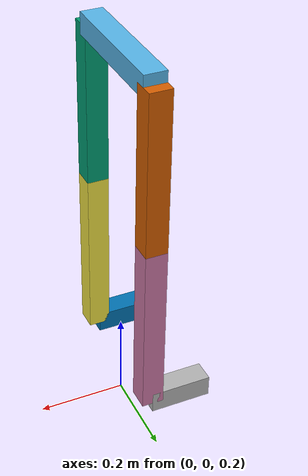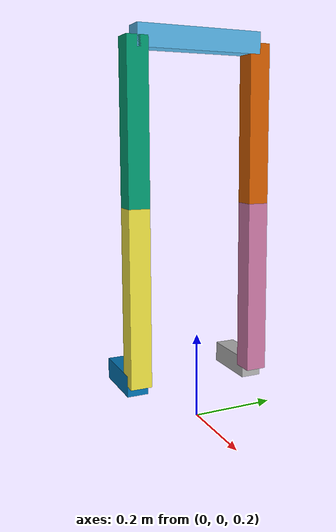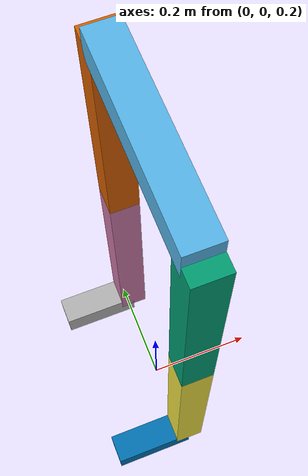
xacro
<?xml version="1.0"?>
<!-- Revolute-Revolute Manipulator -->
<robot name="march" xmlns:xacro="http://www.ros.org/wiki/xacro">

    <!-- Constants for robot dimensions -->
    <xacro:property name="PI" value="3.1415926535897931"/>
    <xacro:property name="mass" value="1"/> <!-- arbitrary value for mass -->
    <xacro:property name="width" value="0.05"/> <!-- Square dimensions (widthxwidth) of beams -->

    <xacro:property name="upper_leg_height" value="${0.37*1}"/>
    <xacro:property name="lower_leg_height" value="${0.41*1}"/>
    <xacro:property name="foot_height" value="${0.14*1}"/>
    <xacro:property name="hip_height" value="0.3"/>

    <xacro:property name="hip_rotation_lower_limit" value="${-100*pi/180}"/>
    <xacro:property name="hip_rotation_upper_limit" value="${90*pi/180}"/>
    <xacro:property name="hip_effort_limit" value="1000.0"/>
    <xacro:property name="hip_velocity_limit" value="1000.0"/>

    <xacro:property name="knee_rotation_lower_limit" value="${-90*pi/180}"/>
    <xacro:property name="knee_rotation_upper_limit" value="${90*pi/180}"/>
    <xacro:property name="knee_effort_limit" value="1000.0"/>
    <xacro:property name="knee_velocity_limit" value="1000.0"/>

    <xacro:property name="ankle_rotation_lower_limit" value="${-50*pi/180}"/>
    <xacro:property name="ankle_rotation_upper_limit" value="${30*pi/180}"/>
    <xacro:property name="ankle_effort_limit" value="1000.0"/>
    <xacro:property name="ankle_velocity_limit" value="1000.0"/>

    <xacro:property name="hover_height" value="0.3"/>

    <xacro:property name="camera_link" value="0.05"/> <!-- Size of square 'camera' box -->
    <xacro:property name="axel_offset" value="0.05"/> <!-- Space btw top of beam and the each joint -->

    <!-- Import all Gazebo-customization elements, including Gazebo colors -->
    <xacro:include filename="$(find march_description)/urdf/march.gazebo"/>

    <!-- Used for fixing robot to Gazebo 'base_link' -->
    <link name="world"/>

    <joint name="hip" type="fixed">
        <parent link="world"/>
        <child link="hip_bone"/>
        <origin xyz="0 0 ${lower_leg_height+upper_leg_height+hover_height}" rpy="0 0 0"/>
    </joint>

    <joint name="left_hip" type="revolute">
        <parent link="hip_bone"/>
        <child link="upper_leg_left"/>
        <origin xyz="0 ${-hip_height/2} 0" rpy="0 0 0"/>
        <axis xyz="0 1 0"/>
        <limit velocity="${hip_velocity_limit}" effort="${hip_effort_limit}" lower="${hip_rotation_lower_limit}" upper="${hip_rotation_upper_limit}"/>
    </joint>

    <joint name="left_knee" type="revolute">
        <parent link="upper_leg_left"/>
        <child link="lower_leg_left"/>
        <origin xyz="0 0 ${-upper_leg_height}" rpy="0 0 0"/>
        <axis xyz="0 -1 0"/>
        <limit velocity="${knee_velocity_limit}" effort="${knee_effort_limit}" lower="${knee_rotation_lower_limit}" upper="${knee_rotation_upper_limit}"/>
    </joint>

    <joint name="left_ankle" type="revolute">
        <parent link="lower_leg_left"/>
        <child link="foot_left"/>
        <origin xyz="0 0 ${-lower_leg_height}" rpy="0 0 0"/>
        <axis xyz="0 1 0"/>
        <limit velocity="${ankle_velocity_limit}" effort="${ankle_effort_limit}" lower="${ankle_rotation_lower_limit}" upper="${ankle_rotation_upper_limit}"/>
    </joint>

    <joint name="right_hip" type="revolute">
        <parent link="hip_bone"/>
        <child link="upper_leg_right"/>
        <origin xyz="0 ${hip_height/2} 0" rpy="0 0 0"/>
        <axis xyz="0 1 0"/>
        <limit velocity="${hip_velocity_limit}" effort="${hip_effort_limit}" lower="${hip_rotation_lower_limit}" upper="${hip_rotation_upper_limit}"/>
    </joint>

    <joint name="right_knee" type="revolute">
        <parent link="upper_leg_right"/>
        <child link="lower_leg_right"/>
        <origin xyz="0 0 ${-upper_leg_height}" rpy="0 0 0"/>
        <axis xyz="0 -1 0"/>
        <limit velocity="${knee_velocity_limit}" effort="${knee_effort_limit}" lower="${knee_rotation_lower_limit}" upper="${knee_rotation_upper_limit}"/>
    </joint>

    <joint name="right_ankle" type="revolute">
        <parent link="lower_leg_right"/>
        <child link="foot_right"/>
        <origin xyz="0 0 ${-lower_leg_height}" rpy="0 0 0"/>
        <axis xyz="0 1 0"/>
        <limit velocity="${ankle_velocity_limit}" effort="${ankle_effort_limit}" lower="${ankle_rotation_lower_limit}" upper="${ankle_rotation_upper_limit}"/>
    </joint>

    <!-- Hip-->
    <link name="hip_bone">
        <collision>
            <origin xyz="0 0 0" rpy="0 0 0"/>
            <geometry>
                <box size="${width} ${width} ${hip_height}"/>
            </geometry>
        </collision>

        <visual>
            <origin xyz="0 0 0" rpy="0 0 0"/>
            <geometry>
                <box size="${width} ${hip_height} ${width}"/>
            </geometry>
        </visual>

        <inertial>
            <origin xyz="0 0 0" rpy="0 0 0"/>
            <mass value="${mass}"/>
            <inertia
                    ixx="${mass / 12.0 * (width*width + lower_leg_height*lower_leg_height)}" ixy="0.0" ixz="0.0"
                    iyy="${mass / 12.0 * (lower_leg_height*lower_leg_height + width*width)}" iyz="0.0"
                    izz="${mass / 12.0 * (width*width + width*width)}"/>
        </inertial>
    </link>

    <!-- Upper Leg Left-->
    <link name="upper_leg_left">
        <collision>
            <origin xyz="0 0 ${-upper_leg_height/2}" rpy="0 0 0"/>
            <geometry>
                <box size="${width} ${width} ${upper_leg_height}"/>
            </geometry>
        </collision>

        <visual>
            <origin xyz="0 0 ${-upper_leg_height/2}" rpy="0 0 0"/>
            <geometry>
                <box size="${width} ${width} ${upper_leg_height}"/>
            </geometry>
        </visual>

        <inertial>
            <origin xyz="0 0 ${-upper_leg_height/2}" rpy="0 0 0"/>
            <mass value="${mass}"/>
            <inertia
                    ixx="${mass / 12.0 * (width*width + upper_leg_height*upper_leg_height)}" ixy="0.0" ixz="0.0"
                    iyy="${mass / 12.0 * (upper_leg_height*upper_leg_height + width*width)}" iyz="0.0"
                    izz="${mass / 12.0 * (width*width + width*width)}"/>
        </inertial>
    </link>

    <!-- Lower Leg Left -->
    <link name="lower_leg_left">
        <collision>
            <origin xyz="0 0 ${-lower_leg_height/2}" rpy="0 0 0"/>
            <geometry>
                <box size="${width} ${width} ${lower_leg_height}"/>
            </geometry>
        </collision>

        <visual>
            <origin xyz="0 0 ${-lower_leg_height/2}" rpy="0 0 0"/>
            <geometry>
                <box size="${width} ${width} ${lower_leg_height}"/>
            </geometry>
        </visual>

        <inertial>
            <origin xyz="0 0 ${-lower_leg_height/2}" rpy="0 0 0"/>
            <mass value="${mass}"/>
            <inertia
                    ixx="${mass / 12.0 * (width*width + lower_leg_height*lower_leg_height)}" ixy="0.0" ixz="0.0"
                    iyy="${mass / 12.0 * (lower_leg_height*lower_leg_height + width*width)}" iyz="0.0"
                    izz="${mass / 12.0 * (width*width + width*width)}"/>
        </inertial>
    </link>

    <!-- Foot Left -->
    <link name="foot_left">
        <collision>
            <origin xyz="${-foot_height/2} 0 0" rpy="0 0 0"/>
            <geometry>
                <box size="${width} ${foot_height} ${width}"/>
            </geometry>
        </collision>

        <visual>
            <origin xyz="${-foot_height/2} 0 0" rpy="0 0 0"/>
            <geometry>
                <box size="${foot_height} ${width} ${width}"/>
            </geometry>
        </visual>

        <inertial>
            <origin xyz="${-foot_height/2} 0 0" rpy="0 0 0"/>
            <mass value="${mass}"/>
            <inertia
                    ixx="${mass / 12.0 * (width*width + lower_leg_height*lower_leg_height)}" ixy="0.0" ixz="0.0"
                    iyy="${mass / 12.0 * (lower_leg_height*lower_leg_height + width*width)}" iyz="0.0"
                    izz="${mass / 12.0 * (width*width + width*width)}"/>
        </inertial>
    </link>

    <!-- Upper Leg Right-->
    <link name="upper_leg_right">
        <collision>
            <origin xyz="0 0 ${-upper_leg_height/2}" rpy="0 0 0"/>
            <geometry>
                <box size="${width} ${width} ${upper_leg_height}"/>
            </geometry>
        </collision>

        <visual>
            <origin xyz="0 0 ${-upper_leg_height/2}" rpy="0 0 0"/>
            <geometry>
                <box size="${width} ${width} ${upper_leg_height}"/>
            </geometry>
        </visual>

        <inertial>
            <origin xyz="0 0 ${-upper_leg_height/2}" rpy="0 0 0"/>
            <mass value="${mass}"/>
            <inertia
                    ixx="${mass / 12.0 * (width*width + upper_leg_height*upper_leg_height)}" ixy="0.0" ixz="0.0"
                    iyy="${mass / 12.0 * (upper_leg_height*upper_leg_height + width*width)}" iyz="0.0"
                    izz="${mass / 12.0 * (width*width + width*width)}"/>
        </inertial>
    </link>

    <!-- Lower Leg Right -->
    <link name="lower_leg_right">
        <collision>
            <origin xyz="0 0 ${-lower_leg_height/2}" rpy="0 0 0"/>
            <geometry>
                <box size="${width} ${width} ${lower_leg_height}"/>
            </geometry>
        </collision>

        <visual>
            <origin xyz="0 0 ${-lower_leg_height/2}" rpy="0 0 0"/>
            <geometry>
                <box size="${width} ${width} ${lower_leg_height}"/>
            </geometry>
        </visual>

        <inertial>
            <origin xyz="0 0 ${-lower_leg_height/2}" rpy="0 0 0"/>
            <mass value="${mass}"/>
            <inertia
                    ixx="${mass / 12.0 * (width*width + lower_leg_height*lower_leg_height)}" ixy="0.0" ixz="0.0"
                    iyy="${mass / 12.0 * (lower_leg_height*lower_leg_height + width*width)}" iyz="0.0"
                    izz="${mass / 12.0 * (width*width + width*width)}"/>
        </inertial>
    </link>

    <!-- Foot Right -->
    <link name="foot_right">
        <collision>
            <origin xyz="${-foot_height/2} 0 0" rpy="0 0 0"/>
            <geometry>
                <box size="${width} ${foot_height} ${width}"/>
            </geometry>
        </collision>

        <visual>
            <origin xyz="${-foot_height/2} 0 0" rpy="0 0 0"/>
            <geometry>
                <box size="${foot_height} ${width} ${width}"/>
            </geometry>
        </visual>

        <inertial>
            <origin xyz="${-foot_height/2} 0 0" rpy="0 0 0"/>
            <mass value="${mass}"/>
            <inertia
                    ixx="${mass / 12.0 * (width*width + lower_leg_height*lower_leg_height)}" ixy="0.0" ixz="0.0"
                    iyy="${mass / 12.0 * (lower_leg_height*lower_leg_height + width*width)}" iyz="0.0"
                    izz="${mass / 12.0 * (width*width + width*width)}"/>
        </inertial>
    </link>

    <!-- ROS Control plugin for Gazebo -->

    <transmission name="left_hip">
        <type>transmission_interface/SimpleTransmission</type>
        <joint name="left_hip">
            <hardwareInterface>hardware_interface/EffortJointInterface</hardwareInterface>
        </joint>
        <actuator name="left_hip_motor">
            <hardwareInterface>hardware_interface/EffortJointInterface</hardwareInterface>
            <mechanicalReduction>1</mechanicalReduction>
        </actuator>
    </transmission>

    <transmission name="left_knee">
        <type>transmission_interface/SimpleTransmission</type>
        <joint name="left_knee">
            <hardwareInterface>hardware_interface/EffortJointInterface</hardwareInterface>
        </joint>
        <actuator name="left_knee_motor">
            <hardwareInterface>hardware_interface/EffortJointInterface</hardwareInterface>
            <mechanicalReduction>1</mechanicalReduction>
        </actuator>
    </transmission>

    <transmission name="left_ankle">
        <type>transmission_interface/SimpleTransmission</type>
        <joint name="left_ankle">
            <hardwareInterface>hardware_interface/EffortJointInterface</hardwareInterface>
        </joint>
        <actuator name="left_ankle_motor">
            <hardwareInterface>hardware_interface/EffortJointInterface</hardwareInterface>
            <mechanicalReduction>1</mechanicalReduction>
        </actuator>
    </transmission>

    <transmission name="right_hip">
        <type>transmission_interface/SimpleTransmission</type>
        <joint name="right_hip">
            <hardwareInterface>hardware_interface/EffortJointInterface</hardwareInterface>
        </joint>
        <actuator name="right_hip_motor">
            <hardwareInterface>hardware_interface/EffortJointInterface</hardwareInterface>
            <mechanicalReduction>1</mechanicalReduction>
        </actuator>
    </transmission>

    <transmission name="right_knee">
        <type>transmission_interface/SimpleTransmission</type>
        <joint name="right_knee">
            <hardwareInterface>hardware_interface/EffortJointInterface</hardwareInterface>
        </joint>
        <actuator name="right_knee_motor">
            <hardwareInterface>hardware_interface/EffortJointInterface</hardwareInterface>
            <mechanicalReduction>1</mechanicalReduction>
        </actuator>
    </transmission>

    <transmission name="right_ankle">
        <type>transmission_interface/SimpleTransmission</type>
        <joint name="right_ankle">
            <hardwareInterface>hardware_interface/EffortJointInterface</hardwareInterface>
        </joint>
        <actuator name="right_ankle_motor">
            <hardwareInterface>hardware_interface/EffortJointInterface</hardwareInterface>
            <mechanicalReduction>1</mechanicalReduction>
        </actuator>
    </transmission>

</robot>
